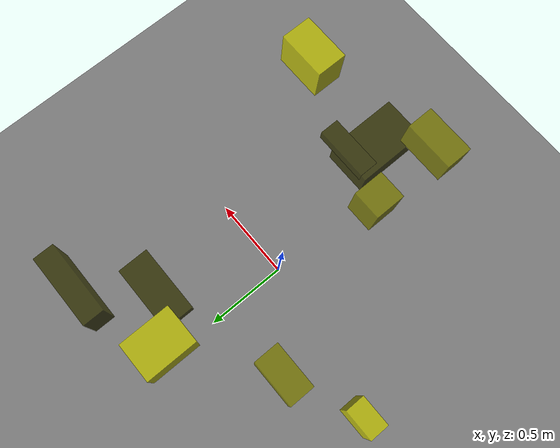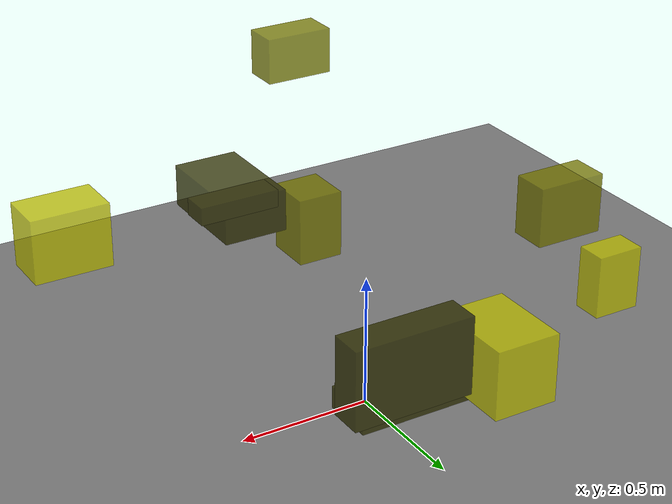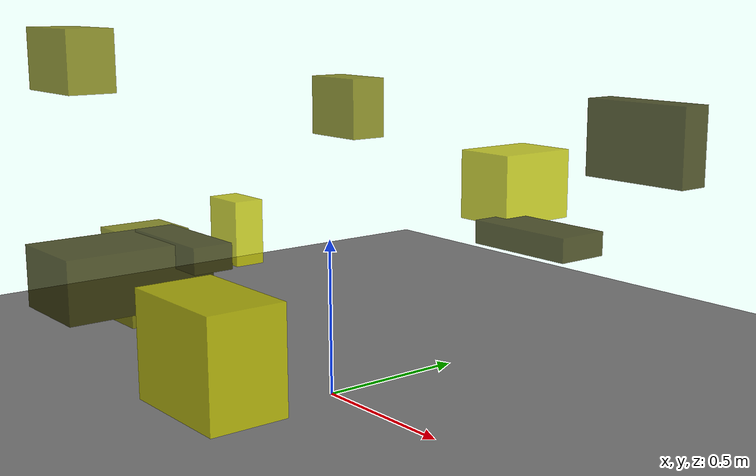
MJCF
<?xml version="1.0"?>
<mujoco model="obstacle_scene">
  <compiler angle="radian" coordinate="local"/>
  <option timestep="0.001" gravity="0 0 -9.81"/>

  <asset>
    <material name="obstacle_mat" rgba="0.8 0.8 0.0 0.8"/>
    <material name="ground_mat" rgba="0.5 0.5 0.5 1"/>
  </asset>

  <worldbody>
    <!-- Ground plane -->
    <geom name="ground" type="plane" size="3 3 0.1" material="ground_mat"/>

    <!-- Obstacles -->
    <body name="obstacle_0" pos="0.191441 -0.618112 0.590120">
      <geom name="obs_0" type="box" size="0.158310 0.055258 0.034516" rgba="0.2 0.2 0.0 0.8"/>
    </body>
    <body name="obstacle_1" pos="-0.102558 -0.575943 0.464671">
      <geom name="obs_1" type="box" size="0.087953 0.092912 0.131112" rgba="0.5 0.5 0.0 0.8"/>
    </body>
    <body name="obstacle_2" pos="0.765926 -0.873986 0.496262">
      <geom name="obs_2" type="box" size="0.153719 0.095015 0.127662" rgba="0.8 0.8 0.0 0.8"/>
    </body>
    <body name="obstacle_3" pos="0.127323 -0.765386 0.534711">
      <geom name="obs_3" type="box" size="0.125981 0.202144 0.082672" rgba="0.2 0.2 0.0 0.8"/>
    </body>
    <body name="obstacle_4" pos="-0.476836 0.428966 0.852812">
      <geom name="obs_4" type="box" size="0.122349 0.066548 0.104446" rgba="0.5 0.5 0.0 0.8"/>
    </body>
    <body name="obstacle_5" pos="0.013287 0.785500 0.598599">
      <geom name="obs_5" type="box" size="0.112301 0.147398 0.119706" rgba="0.8 0.8 0.0 0.8"/>
    </body>
    <body name="obstacle_6" pos="0.458394 0.929011 0.777661">
      <geom name="obs_6" type="box" size="0.198828 0.055897 0.130271" rgba="0.2 0.2 0.0 0.8"/>
    </body>
    <body name="obstacle_7" pos="-0.135426 -0.755715 1.074406">
      <geom name="obs_7" type="box" size="0.127059 0.067454 0.085158" rgba="0.5 0.5 0.0 0.8"/>
    </body>
    <body name="obstacle_8" pos="-0.908888 0.219033 0.363207">
      <geom name="obs_8" type="box" size="0.091863 0.058184 0.122042" rgba="0.8 0.8 0.0 0.8"/>
    </body>
    <body name="obstacle_9" pos="0.271261 0.637594 0.468595">
      <geom name="obs_9" type="box" size="0.197606 0.091132 0.039459" rgba="0.2 0.2 0.0 0.8"/>
    </body>
  </worldbody>
</mujoco>
